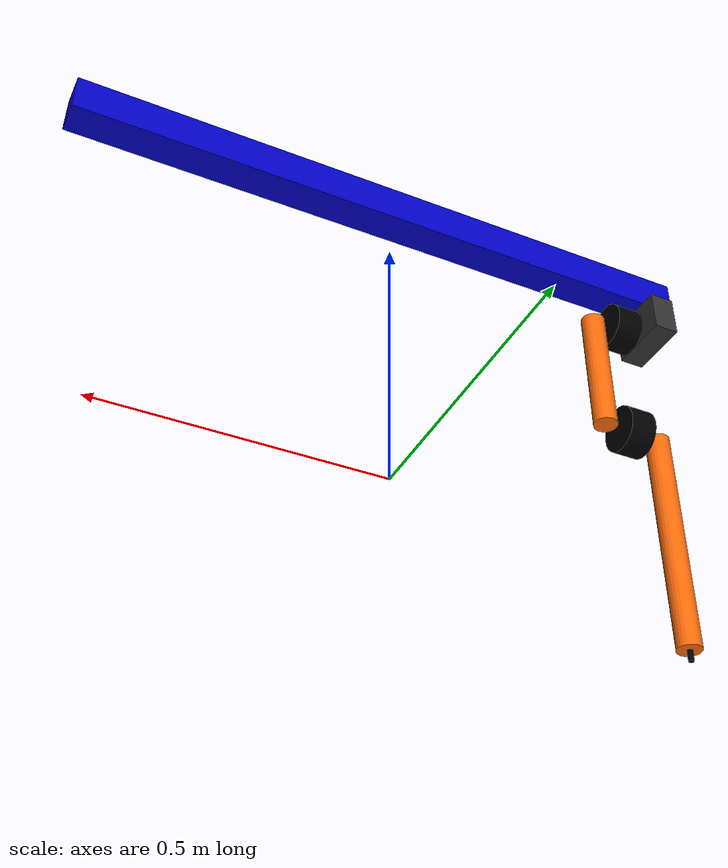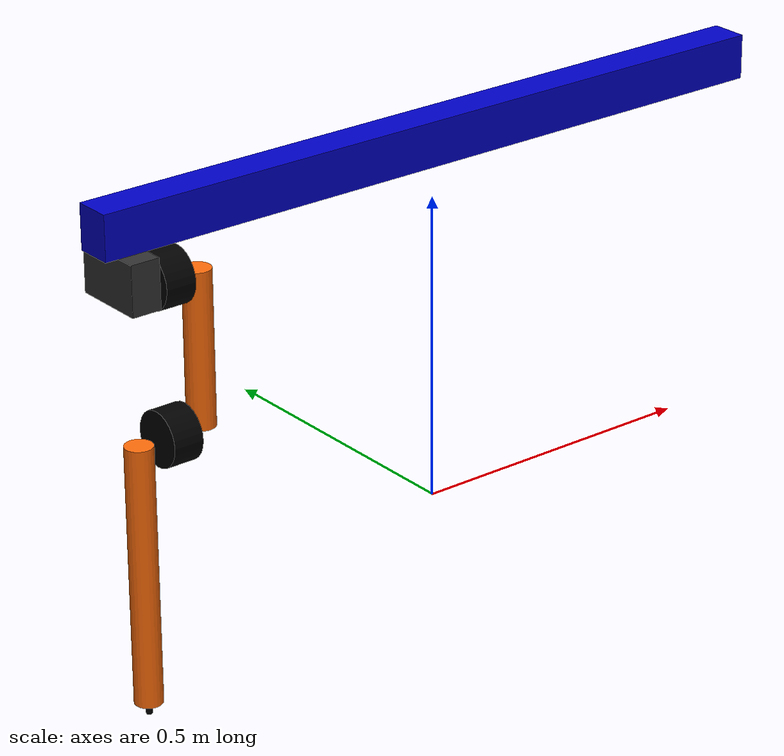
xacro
<?xml version="1.0"?>
<robot xmlns:xacro="http://www.ros.org/wiki/xacro" name="weed_arm">
    <xacro:arg name="initial_positions_file" default="initial_positions.yaml" />

    <!-- Import weed_arm urdf file -->
    <xacro:include filename="$(find ofa_description)/urdf/robot.urdf.xacro" />

    <!-- Import control_xacro -->
    <xacro:include filename="weed_arm.ros2_control.xacro" />

    <xacro:weed_arm_ros2_control name="FakeSystem" initial_positions_file="$(arg initial_positions_file)"/>

</robot>

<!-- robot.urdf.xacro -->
<!-- Weed Control Unit Robot Arm -->
<robot xmlns:xacro="http://www.ros.org/wiki/xacro" name="ofa_arm">

  <!-- Enable setting arguments from the launch file -->
  <xacro:arg name="use_mock_hardware" default="false" />

  <!-- Import robot macro -->
   <xacro:include filename="robot_description.urdf.xacro" />

  <!-- Import materials and inertia macros -->
  <xacro:include filename="inertia.urdf.xacro" />
  <xacro:include filename="materials.urdf.xacro" />

  <!-- Import ros2_control description -->
  <xacro:include filename="$(find ofa_description)/ros2_control/arm_2dof.ros2_control.xacro" />
  <xacro:include filename="$(find ofa_description)/ros2_control/linear_axis.ros2_control.xacro" />

  <!-- Used for fixing robot -->
  <link name="world"/>

  <xacro:weed_robot parent="world" />

  <xacro:arm_2dof_ros2_control
    name="arm_2dof" use_mock_hardware="$(arg use_mock_hardware)"/>
  <xacro:linear_axis_ros2_control
    name="linear_axis" use_mock_hardware="$(arg use_mock_hardware)"/>

</robot>

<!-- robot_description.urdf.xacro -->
<robot xmlns:xacro="http://www.ros.org/wiki/xacro">

  <xacro:macro name="weed_robot" params="parent">

	<xacro:property name="attachment_off" value="${0.06+0.002}" />
	<xacro:property name="tube_off" value="${0.01}" />
	<xacro:property name="height" value="${0.5+attachment_off}" />

	<joint name="base_joint" type="fixed">
		<origin xyz="0 0 ${height}" rpy="0 0 0" />
		<parent link="${parent}" />
		<child link="base_link" />
	</joint>

	<xacro:property name="base_l" value="1.216" />
	<xacro:property name="base_w" value="0.06" />
	<xacro:property name="base_h" value="0.072" />
	<xacro:property name="base_m" value="6" />
	<link name="base_link">
		<visual>
			<origin xyz="0 0 ${base_h/2}" rpy="0 0 0" />
			<geometry>
				<box size="${base_l} ${base_w} ${base_h}" />
			</geometry>
			<material name="blue"/>
		</visual>
		<collision>
			<origin xyz="0 0 ${base_h/2}" rpy="0 0 0" />
			<geometry>
				<box size="${base_l} ${base_w} ${base_h}" />
			</geometry>
		</collision>
		<inertial>
			<origin xyz="0 0 ${base_h/2}" rpy="0 0 0" />
			<mass value="${base_m}" />
			<xacro:box_inertia m="${base_m}" x="${base_l}" y="${base_w}" z="${base_h}" />
		</inertial>
	</link>

	<xacro:property name="axis_length" value="1" />
	<joint name="joint1" type="prismatic">
		<origin xyz="${-base_l/2+0.116} 0 ${-attachment_off}" rpy="0 0 0" />
		<parent link="base_link" />
		<child link="link1" />
		<axis xyz="1 0 0" />
		<limit lower="0" upper="${axis_length}" velocity="1.0" effort="10" />
	</joint>

	<xacro:property name="motor_r" value="${0.089/2}" />
	<xacro:property name="motor_h" value="0.05025" />
	<xacro:property name="motor_m" value="0.521" />
	<link name="link1">
		<visual>
			<origin xyz="0 0 0" rpy="0 ${pi/2} 0" />
			<geometry>
				<cylinder length="${motor_h}" radius="${motor_r}" />
			</geometry>
			<material name="black"/>
		</visual>
		<collision>
			<origin xyz="0 0 0" rpy="0 ${pi/2} 0" />
			<geometry>
				<cylinder length="${motor_h}" radius="${motor_r}" />
			</geometry>
		</collision>
		<inertial>
			<origin xyz="0 0 0" rpy="0 ${pi/2} 0" />
			<mass value="${motor_m}" />
			<xacro:cylinder_inertia m="${motor_m}" r="${motor_r}" h="${motor_h}" />
		</inertial>
	</link>

	<xacro:property name="camera_w" value="0.12" />
	<xacro:property name="camera_h" value="0.08" />
	<xacro:property name="camera_l" value="0.048" />
	<xacro:property name="camera_m" value="0.335" />
	<xacro:property name="camera_off" value="${0.0885/2+0.002}" />
	<joint name="joint1_camera" type="fixed">
		<origin xyz="-${camera_off} 0 ${attachment_off}" rpy="0 0 0" />
		<parent link="link1" />
		<child link="link1_camera" />
	</joint>

	<link name="link1_camera">
		<visual>
			<origin xyz="${-camera_l/2} 0 ${-camera_h/2}" rpy="0 0 0" />
			<geometry>
				<box size="${camera_l} ${camera_w} ${camera_h}" />
			</geometry>
			<material name="grey"/>
		</visual>
		<collision>
			<origin xyz="${-camera_l/2} 0 ${-camera_h/2}" rpy="0 0 0" />
			<geometry>
				<box size="${camera_l} ${camera_w} ${camera_h}" />
			</geometry>
		</collision>
		<inertial>
			<origin xyz="${-camera_l/2} 0 ${-camera_h/2}" rpy="0 0 0" />
			<mass value="${camera_m}" />
			<xacro:box_inertia m="${camera_m}" x="${camera_l}" y="${camera_w}" z="${camera_h}" />
		</inertial>
	</link>

	<joint name="joint2" type="revolute">
		<origin xyz="${motor_h/2+tube_off} 0 0" rpy="0 0 0" />
		<parent link="link1" />
		<child link="link2" />
		<axis xyz="1 0 0" />
		<limit lower="${-pi*2/3}" upper="${pi*2/3}" velocity="5.0" effort="10" />
	</joint>

	<xacro:property name="arm_r" value="${0.045/2}" />
	<xacro:property name="arm_ri" value="${0.041/2}" />
	<xacro:property name="arm1_l" value="0.25" />
	<xacro:property name="arm1_m" value="${1650*(arm_r**2*pi-arm_ri**2*pi)*arm1_l}" />
	<xacro:property name="arm2_l" value="0.425" />
	<xacro:property name="arm2_m" value="${1650*(arm_r**2*pi-arm_ri**2*pi)*arm2_l}" />
	<link name="link2">
		<visual>
			<origin xyz="${arm_r} 0 ${-arm1_l/2}" rpy="0 0 0" />
			<geometry>
				<cylinder length="${arm1_l}" radius="${arm_r}" />
			</geometry>
			<material name="orange"/>
		</visual>
		<collision>
			<origin xyz="${arm_r} 0 ${-arm1_l/2}" rpy="0 0 0" />
			<geometry>
				<cylinder length="${arm1_l}" radius="${arm_r}" />
			</geometry>
		</collision>
		<inertial>
			<origin xyz="${arm_r} 0 ${-arm1_l/2}" rpy="0 0 0" />
			<mass value="${arm1_m}" />
			<xacro:cylinder_inertia m="${arm1_m}" r="${arm_r}" h="${arm1_l}" />
		</inertial>
	</link>

	<joint name="joint2_motor" type="fixed">
		<origin xyz="${-motor_h/2-0.0058} 0 ${-arm1_l}" rpy="0 0 0" />
		<parent link="link2" />
		<child link="link2_motor" />
	</joint>

	<link name="link2_motor">
		<visual>
			<origin xyz="0 0 0" rpy="0 ${pi/2} 0" />
			<geometry>
				<cylinder length="${motor_h}" radius="${motor_r}" />
			</geometry>
			<material name="black"/>
		</visual>
		<collision>
			<origin xyz="0 0 0" rpy="0 ${pi/2} 0" />
			<geometry>
				<cylinder length="${motor_h}" radius="${motor_r}" />
			</geometry>
		</collision>
		<inertial>
			<origin xyz="0 0 0" rpy="0 ${pi/2} 0" />
			<mass value="${motor_m}" />
			<xacro:cylinder_inertia m="${motor_m}" r="${motor_r}" h="${motor_h}" />
		</inertial>
	</link>

	<joint name="joint3" type="revolute">
		<origin xyz="${-motor_h/2-tube_off} 0 0" rpy="0 0 0" />
		<parent link="link2_motor" />
		<child link="link3" />
		<axis xyz="1 0 0" />
		<limit lower="${-pi*2/3}" upper="${pi*2/3}" velocity="5.0" effort="10" />
	</joint>

	<link name="link3">
		<visual>
			<origin xyz="${-arm_r} 0 ${-arm2_l/2}" rpy="0 0 0" />
			<geometry>
				<cylinder length="${arm2_l}" radius="${arm_r}" />
			</geometry>
			<material name="orange"/>
		</visual>
		<collision>
			<origin xyz="${-arm_r} 0 ${-arm2_l/2}" rpy="0 0 0" />
			<geometry>
				<cylinder length="${arm2_l}" radius="${arm_r}" />
			</geometry>
		</collision>
		<inertial>
			<origin xyz="${-arm_r} 0 ${-arm2_l/2}" rpy="0 0 0" />
			<mass value="${arm2_m}" />
			<xacro:cylinder_inertia m="${arm2_m}" r="${arm_r}" h="${arm2_l}" />
		</inertial>
	</link>

	<joint name="joint3_end" type="fixed">
		<origin xyz="${-arm_r} 0 ${-arm2_l}" rpy="0 0 0" />
		<parent link="link3" />
		<child link="link3_end" />
	</joint>

	<xacro:property name="end_r" value="0.005" />
	<xacro:property name="end_l" value="0.02" />
	<xacro:property name="end_m" value="1" />
	<link name="link3_end">
		<visual>
			<origin xyz="0 0 ${-end_l/2}" rpy="0 0 0" />
			<geometry>
				<cylinder length="${end_l}" radius="${end_r}" />
			</geometry>
			<material name="black"/>
		</visual>
		<collision>
			<origin xyz="0 0 ${-end_l/2}" rpy="0 0 0" />
			<geometry>
				<cylinder length="${end_l}" radius="${end_r}" />
			</geometry>
		</collision>
		<inertial>
			<origin xyz="0 0 ${-end_l/2}" rpy="0 0 0" />
			<mass value="${end_m}" />
			<xacro:cylinder_inertia m="${end_m}" r="${end_r}" h="${end_l}" />
		</inertial>
	</link>

	</xacro:macro>

</robot>

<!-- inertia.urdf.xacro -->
<robot xmlns:xacro="http://www.ros.org/wiki/xacro">
  <xacro:macro name="cylinder_inertia" params="m r h">
    <inertia
      ixx="${m*(3*r*r+h*h)/12}"
      ixy="0"
      ixz="0"
      iyy="${m*(3*r*r+h*h)/12}"
      iyz="0"
      izz="${m*r*r/2}"
    />
  </xacro:macro>
  <xacro:macro name="box_inertia" params="m x y z">
    <inertia
      ixx="${m*(y*y+z*z)/12}"
      ixy="0"
      ixz="0"
      iyy="${m*(x*x+z*z)/12}"
      iyz="0"
      izz="${m*(x*x+y*y)/12}"
    />
  </xacro:macro>
  <xacro:macro name="sphere_inertia" params="m r">
    <inertia
      ixx="${2*m*r*r/5}"
      ixy="0"
      ixz="0"
      iyy="${2*m*r*r/5}"
      iyz="0"
      izz="${2*m*r*r/5}"
    />
  </xacro:macro>
</robot>

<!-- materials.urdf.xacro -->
<robot>
  <material name="black">
    <color rgba="0 0 0 ${255/255}" />
  </material>
  <material name="dark_grey">
    <color rgba="0 0 ${155/255} ${255/255}" />
  </material>
  <material name="blue">
    <color rgba="0 0 ${200/255} ${255/255}" />
  </material>
  <material name="green">
    <color rgba="0 ${200/255} 0 ${255/255}" />
  </material>
  <material name="grey">
    <color rgba="${50/255} ${50/255} ${50/255} ${255/255}" />
  </material>
  <material name="orange">
    <color rgba="${255/255} ${108/255} ${10/255} ${255/255}" />
  </material>
  <material name="brown">
    <color rgba="${222/255} ${207/255} ${195/255} ${255/255}" />
  </material>
  <material name="red">
    <color rgba="${200/255} 0 0 ${255/255}" />
  </material>
  <material name="white">
    <color rgba="${255/255} ${255/255} ${255/255} ${255/255}" />
  </material>
</robot>
